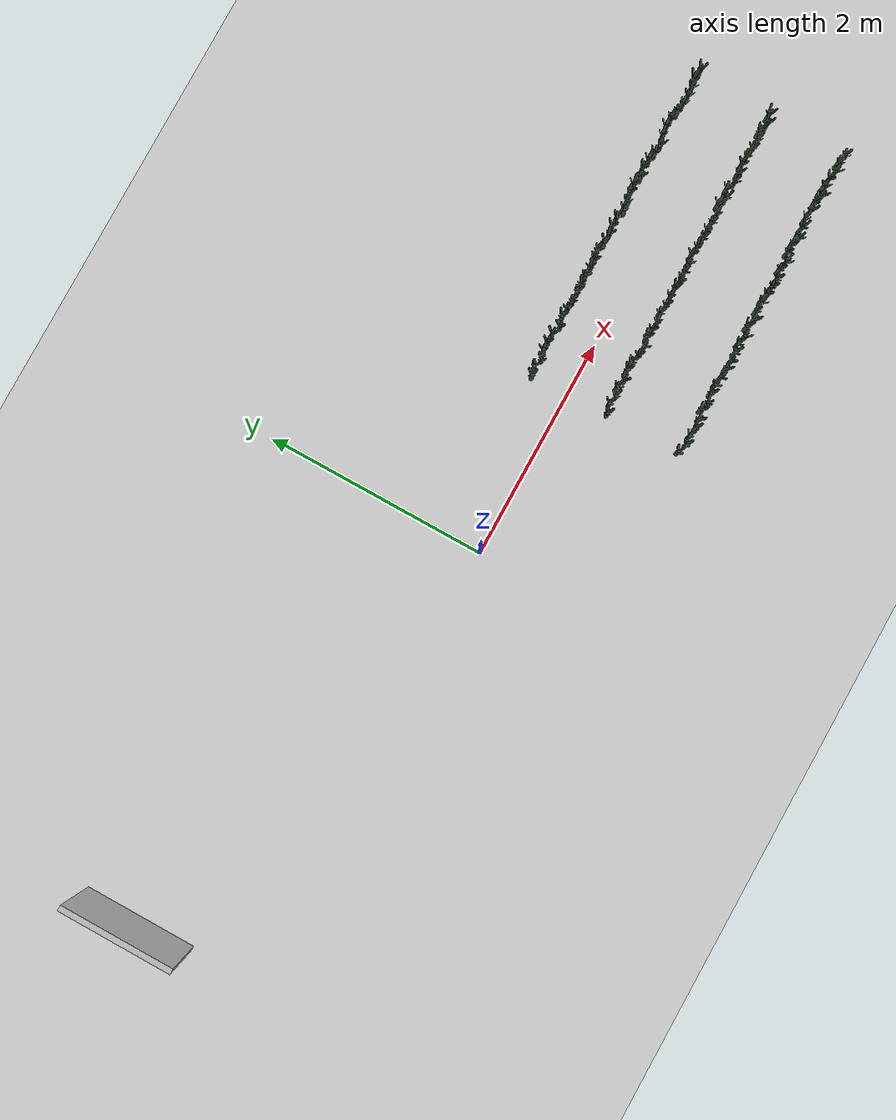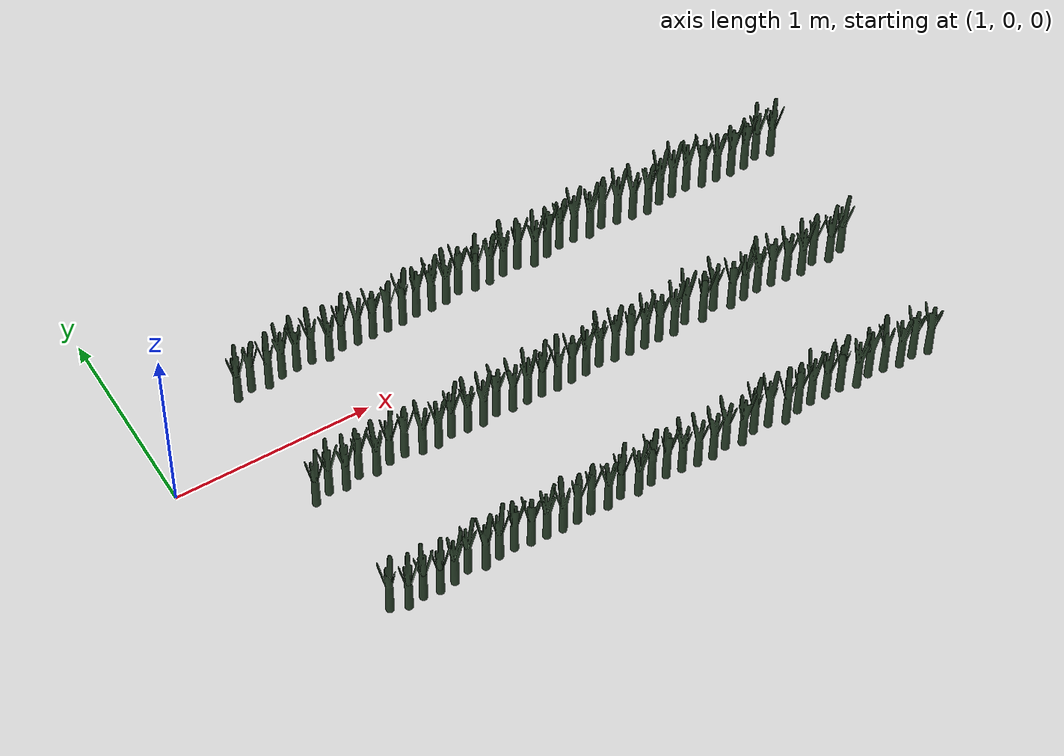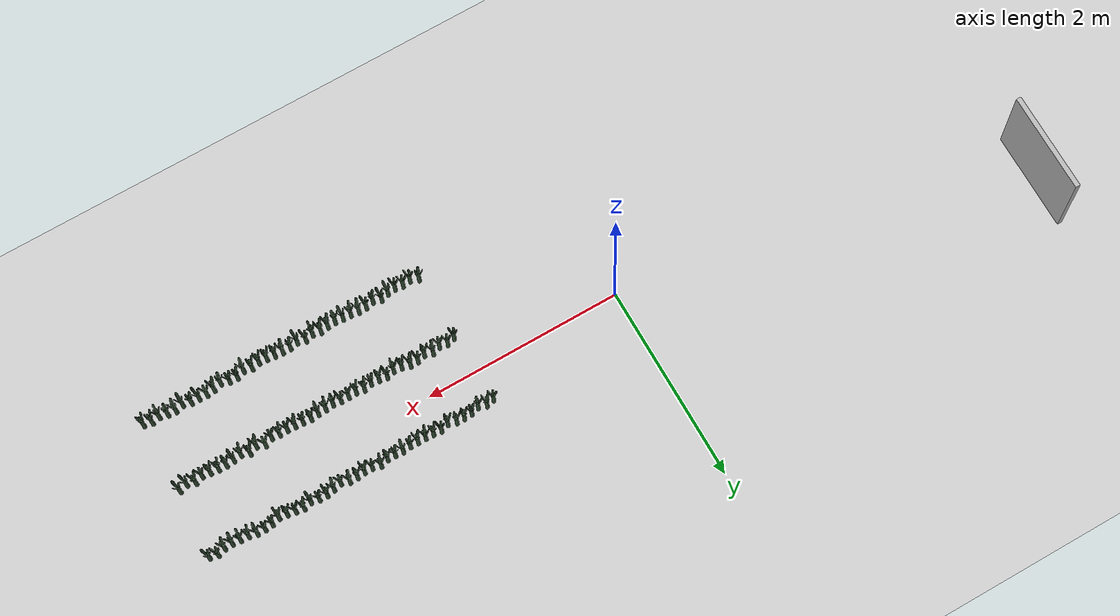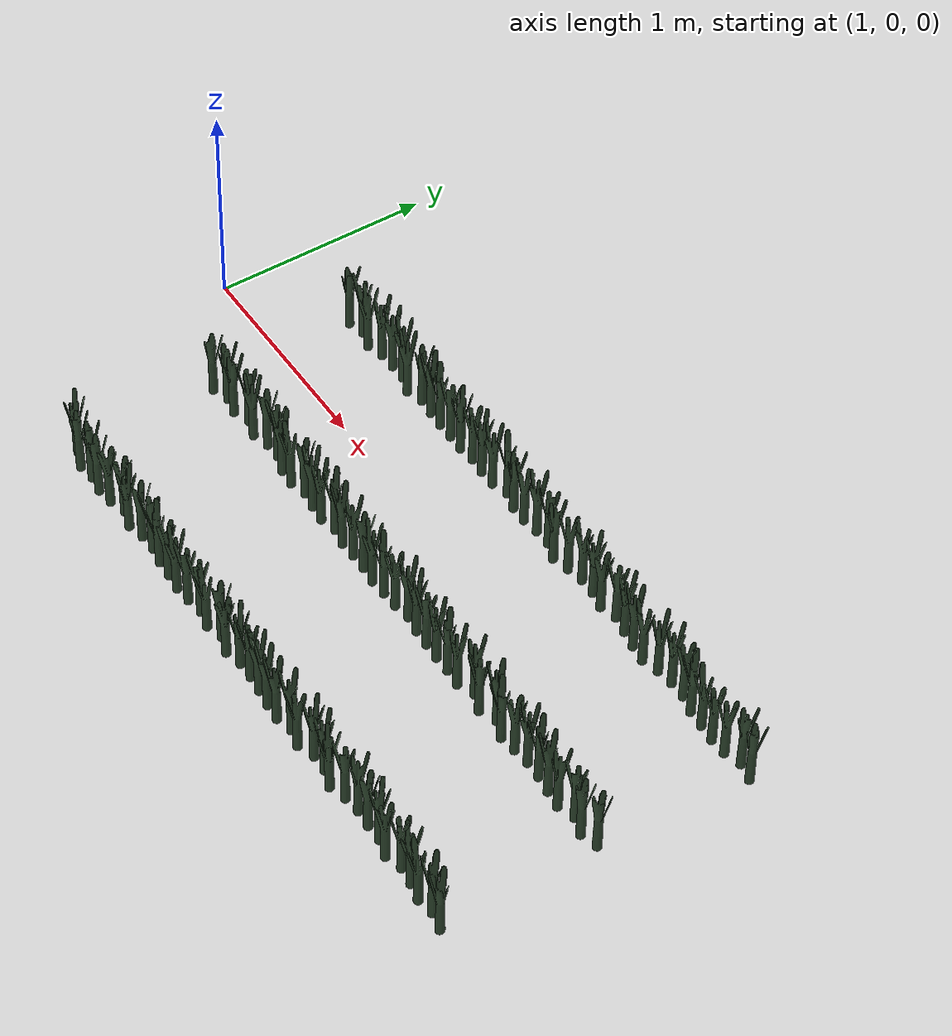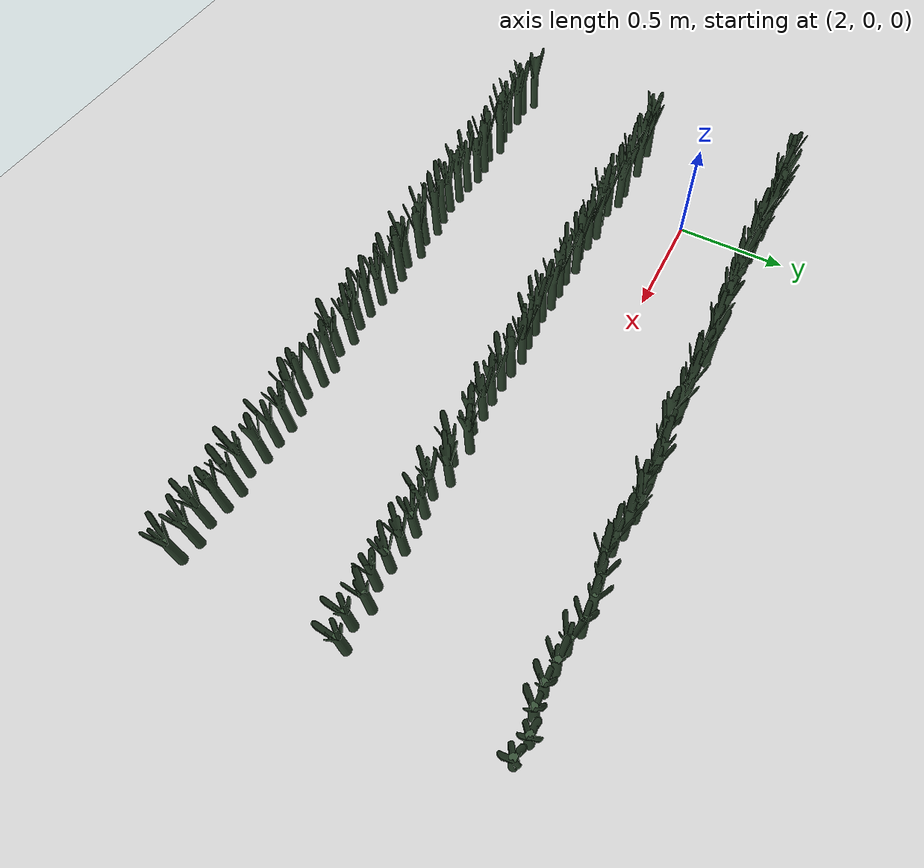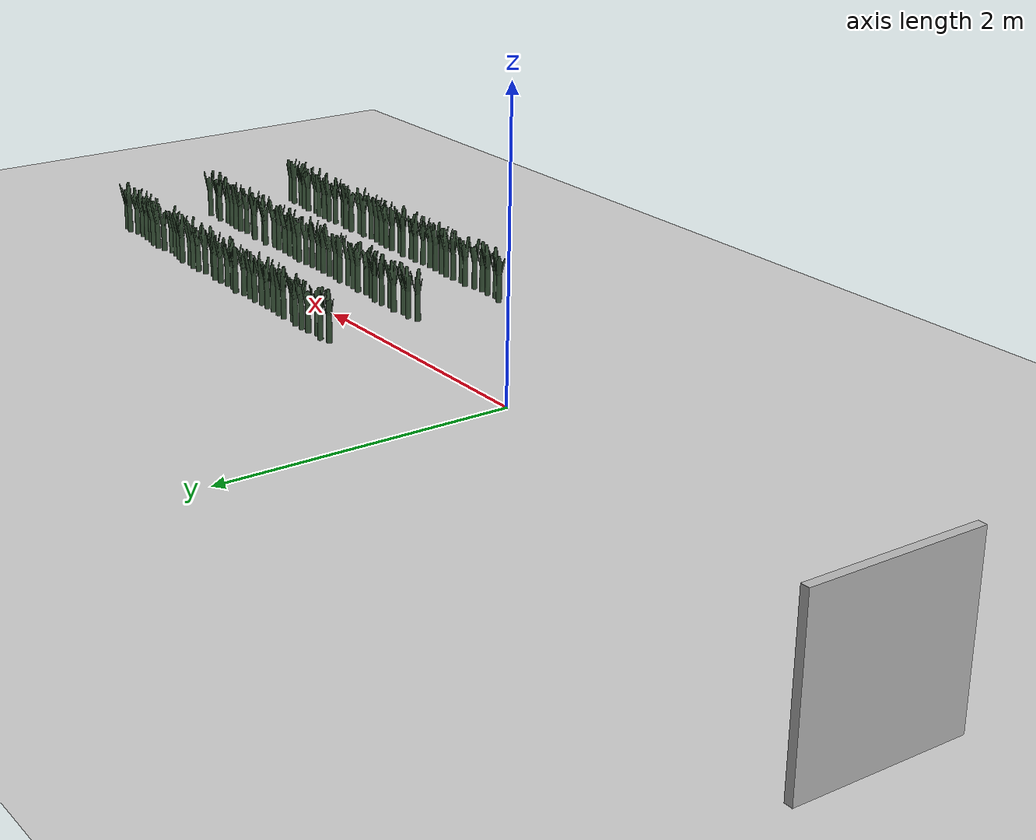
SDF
<sdf version="1.6">
 <world name="default">
  <include><uri>model://Sign</uri><pose>-4 1 0 0 0 0</pose><static>1</static></include>
  <include><uri>model://dirt_plane</uri></include>
  <include>
   <uri>model://Leek</uri>
   <pose>1.500000 0.336683 0.15 0 0 -119.856110</pose>
   <static>0</static>
  </include>
  <include><uri>model://Leek</uri><pose>1.580000 0.357397 0.15 0 0 66.569121</pose><static>0</static></include>
  <include>
   <uri>model://Leek</uri>
   <pose>1.660000 0.331286 0.15 0 0 -168.427791</pose>
   <static>0</static>
  </include>
  <include><uri>model://Leek</uri><pose>1.740000 0.353505 0.15 0 0 31.543820</pose><static>0</static></include>
  <include><uri>model://Leek</uri><pose>1.820000 0.357174 0.15 0 0 64.565280</pose><static>0</static></include>
  <include><uri>model://Leek</uri><pose>1.900000 0.358542 0.15 0 0 76.876456</pose><static>0</static></include>
  <include>
   <uri>model://Leek</uri>
   <pose>1.980000 0.330634 0.15 0 0 -174.296210</pose>
   <static>0</static>
  </include>
  <include><uri>model://Leek</uri><pose>2.060000 0.354812 0.15 0 0 43.304618</pose><static>0</static></include>
  <include><uri>model://Leek</uri><pose>2.140000 0.347443 0.15 0 0 -23.017415</pose><static>0</static></include>
  <include><uri>model://Leek</uri><pose>2.220000 0.343311 0.15 0 0 -60.205158</pose><static>0</static></include>
  <include><uri>model://Leek</uri><pose>2.300000 0.344143 0.15 0 0 -52.716708</pose><static>0</static></include>
  <include><uri>model://Leek</uri><pose>2.380000 0.342408 0.15 0 0 -68.332397</pose><static>0</static></include>
  <include><uri>model://Leek</uri><pose>2.460000 0.351909 0.15 0 0 17.183049</pose><static>0</static></include>
  <include><uri>model://Leek</uri><pose>2.540000 0.345871 0.15 0 0 -37.156721</pose><static>0</static></include>
  <include><uri>model://Leek</uri><pose>2.620000 0.346687 0.15 0 0 -29.818209</pose><static>0</static></include>
  <include><uri>model://Leek</uri><pose>2.700000 0.369848 0.15 0 0 178.630719</pose><static>0</static></include>
  <include><uri>model://Leek</uri><pose>2.780000 0.346449 0.15 0 0 -31.954534</pose><static>0</static></include>
  <include><uri>model://Leek</uri><pose>2.860000 0.345508 0.15 0 0 -40.426642</pose><static>0</static></include>
  <include><uri>model://Leek</uri><pose>2.940000 0.356463 0.15 0 0 58.168070</pose><static>0</static></include>
  <include><uri>model://Leek</uri><pose>3.020000 0.359552 0.15 0 0 85.967887</pose><static>0</static></include>
  <include>
   <uri>model://Leek</uri>
   <pose>3.100000 0.330429 0.15 0 0 -176.138756</pose>
   <static>0</static>
  </include>
  <include><uri>model://Leek</uri><pose>3.180000 0.349798 0.15 0 0 -1.814844</pose><static>0</static></include>
  <include><uri>model://Leek</uri><pose>3.260000 0.365732 0.15 0 0 141.584623</pose><static>0</static></include>
  <include><uri>model://Leek</uri><pose>3.340000 0.364702 0.15 0 0 132.321856</pose><static>0</static></include>
  <include><uri>model://Leek</uri><pose>3.420000 0.347757 0.15 0 0 -20.185411</pose><static>0</static></include>
  <include><uri>model://Leek</uri><pose>3.500000 0.369989 0.15 0 0 179.902919</pose><static>0</static></include>
  <include><uri>model://Leek</uri><pose>3.580000 0.355599 0.15 0 0 50.393055</pose><static>0</static></include>
  <include><uri>model://Leek</uri><pose>3.660000 0.341826 0.15 0 0 -73.567735</pose><static>0</static></include>
  <include>
   <uri>model://Leek</uri>
   <pose>3.740000 0.332226 0.15 0 0 -159.968073</pose>
   <static>0</static>
  </include>
  <include><uri>model://Leek</uri><pose>3.820000 0.353527 0.15 0 0 31.746757</pose><static>0</static></include>
  <include><uri>model://Leek</uri><pose>3.900000 0.363976 0.15 0 0 125.786997</pose><static>0</static></include>
  <include><uri>model://Leek</uri><pose>3.980000 0.363087 0.15 0 0 117.787086</pose><static>0</static></include>
  <include><uri>model://Leek</uri><pose>4.060000 0.343284 0.15 0 0 -60.441508</pose><static>0</static></include>
  <include>
   <uri>model://Leek</uri>
   <pose>4.140000 0.338452 0.15 0 0 -103.929621</pose>
   <static>0</static>
  </include>
  <include>
   <uri>model://Leek</uri>
   <pose>4.220000 0.331648 0.15 0 0 -165.169075</pose>
   <static>0</static>
  </include>
  <include>
   <uri>model://Leek</uri>
   <pose>4.300000 0.335132 0.15 0 0 -133.813523</pose>
   <static>0</static>
  </include>
  <include><uri>model://Leek</uri><pose>4.380000 0.358325 0.15 0 0 74.927537</pose><static>0</static></include>
  <include><uri>model://Leek</uri><pose>4.460000 0.341531 0.15 0 0 -76.222130</pose><static>0</static></include>
  <include>
   <uri>model://Leek</uri>
   <pose>1.525438 -0.367535 0.15 0 0 -157.819412</pose>
   <static>0</static>
  </include>
  <include><uri>model://Leek</uri><pose>1.605438 -0.343062 0.15 0 0 62.445167</pose><static>0</static></include>
  <include>
   <uri>model://Leek</uri>
   <pose>1.685438 -0.360500 0.15 0 0 -94.500586</pose>
   <static>0</static>
  </include>
  <include>
   <uri>model://Leek</uri>
   <pose>1.765438 -0.332061 0.15 0 0 161.451084</pose>
   <static>0</static>
  </include>
  <include>
   <uri>model://Leek</uri>
   <pose>1.845438 -0.358896 0.15 0 0 -80.061940</pose>
   <static>0</static>
  </include>
  <include>
   <uri>model://Leek</uri>
   <pose>1.925438 -0.336125 0.15 0 0 124.874266</pose>
   <static>0</static>
  </include>
  <include>
   <uri>model://Leek</uri>
   <pose>2.005438 -0.333495 0.15 0 0 148.548524</pose>
   <static>0</static>
  </include>
  <include>
   <uri>model://Leek</uri>
   <pose>2.085438 -0.360251 0.15 0 0 -92.261435</pose>
   <static>0</static>
  </include>
  <include>
   <uri>model://Leek</uri>
   <pose>2.165438 -0.366412 0.15 0 0 -147.711038</pose>
   <static>0</static>
  </include>
  <include><uri>model://Leek</uri><pose>2.245438 -0.345925 0.15 0 0 36.679219</pose><static>0</static></include>
  <include>
   <uri>model://Leek</uri>
   <pose>2.325438 -0.357481 0.15 0 0 -67.328499</pose>
   <static>0</static>
  </include>
  <include>
   <uri>model://Leek</uri>
   <pose>2.405438 -0.365327 0.15 0 0 -137.947328</pose>
   <static>0</static>
  </include>
  <include><uri>model://Leek</uri><pose>2.485438 -0.345551 0.15 0 0 40.037220</pose><static>0</static></include>
  <include>
   <uri>model://Leek</uri>
   <pose>2.565438 -0.360932 0.15 0 0 -98.387993</pose>
   <static>0</static>
  </include>
  <include>
   <uri>model://Leek</uri>
   <pose>2.645438 -0.357677 0.15 0 0 -69.090162</pose>
   <static>0</static>
  </include>
  <include>
   <uri>model://Leek</uri>
   <pose>2.725438 -0.356380 0.15 0 0 -57.418252</pose>
   <static>0</static>
  </include>
  <include>
   <uri>model://Leek</uri>
   <pose>2.805438 -0.365213 0.15 0 0 -136.920149</pose>
   <static>0</static>
  </include>
  <include>
   <uri>model://Leek</uri>
   <pose>2.885438 -0.358785 0.15 0 0 -79.065460</pose>
   <static>0</static>
  </include>
  <include>
   <uri>model://Leek</uri>
   <pose>2.965438 -0.355064 0.15 0 0 -45.576386</pose>
   <static>0</static>
  </include>
  <include><uri>model://Leek</uri><pose>3.045438 -0.342125 0.15 0 0 70.873980</pose><static>0</static></include>
  <include>
   <uri>model://Leek</uri>
   <pose>3.125438 -0.354135 0.15 0 0 -37.214820</pose>
   <static>0</static>
  </include>
  <include>
   <uri>model://Leek</uri>
   <pose>3.205438 -0.357931 0.15 0 0 -71.383149</pose>
   <static>0</static>
  </include>
  <include>
   <uri>model://Leek</uri>
   <pose>3.285438 -0.361156 0.15 0 0 -100.400910</pose>
   <static>0</static>
  </include>
  <include>
   <uri>model://Leek</uri>
   <pose>3.365438 -0.359510 0.15 0 0 -85.592174</pose>
   <static>0</static>
  </include>
  <include>
   <uri>model://Leek</uri>
   <pose>3.445438 -0.366042 0.15 0 0 -144.377887</pose>
   <static>0</static>
  </include>
  <include>
   <uri>model://Leek</uri>
   <pose>3.525438 -0.334645 0.15 0 0 138.194416</pose>
   <static>0</static>
  </include>
  <include>
   <uri>model://Leek</uri>
   <pose>3.605438 -0.366300 0.15 0 0 -146.702126</pose>
   <static>0</static>
  </include>
  <include>
   <uri>model://Leek</uri>
   <pose>3.685438 -0.333715 0.15 0 0 146.564105</pose>
   <static>0</static>
  </include>
  <include>
   <uri>model://Leek</uri>
   <pose>3.765438 -0.366469 0.15 0 0 -148.220319</pose>
   <static>0</static>
  </include>
  <include>
   <uri>model://Leek</uri>
   <pose>3.845438 -0.355030 0.15 0 0 -45.270060</pose>
   <static>0</static>
  </include>
  <include><uri>model://Leek</uri><pose>3.925438 -0.346333 0.15 0 0 33.002592</pose><static>0</static></include>
  <include><uri>model://Leek</uri><pose>4.005438 -0.348348 0.15 0 0 14.865746</pose><static>0</static></include>
  <include>
   <uri>model://Leek</uri>
   <pose>4.085438 -0.358151 0.15 0 0 -73.363489</pose>
   <static>0</static>
  </include>
  <include>
   <uri>model://Leek</uri>
   <pose>4.165438 -0.366782 0.15 0 0 -151.035081</pose>
   <static>0</static>
  </include>
  <include><uri>model://Leek</uri><pose>4.245438 -0.340495 0.15 0 0 85.541212</pose><static>0</static></include>
  <include>
   <uri>model://Leek</uri>
   <pose>4.325438 -0.367566 0.15 0 0 -158.098135</pose>
   <static>0</static>
  </include>
  <include><uri>model://Leek</uri><pose>4.405438 -0.344539 0.15 0 0 49.147481</pose><static>0</static></include>
  <include>
   <uri>model://Leek</uri>
   <pose>1.529162 -1.035242 0.15 0 0 132.819985</pose>
   <static>0</static>
  </include>
  <include>
   <uri>model://Leek</uri>
   <pose>1.609162 -1.066121 0.15 0 0 -145.084586</pose>
   <static>0</static>
  </include>
  <include>
   <uri>model://Leek</uri>
   <pose>1.689162 -1.054933 0.15 0 0 -44.396029</pose>
   <static>0</static>
  </include>
  <include>
   <uri>model://Leek</uri>
   <pose>1.769162 -1.066828 0.15 0 0 -151.455605</pose>
   <static>0</static>
  </include>
  <include>
   <uri>model://Leek</uri>
   <pose>1.849162 -1.057821 0.15 0 0 -70.384637</pose>
   <static>0</static>
  </include>
  <include>
   <uri>model://Leek</uri>
   <pose>1.929162 -1.033371 0.15 0 0 149.664360</pose>
   <static>0</static>
  </include>
  <include>
   <uri>model://Leek</uri>
   <pose>2.009162 -1.058314 0.15 0 0 -74.828721</pose>
   <static>0</static>
  </include>
  <include><uri>model://Leek</uri><pose>2.089162 -1.040326 0.15 0 0 87.064767</pose><static>0</static></include>
  <include>
   <uri>model://Leek</uri>
   <pose>2.169162 -1.036252 0.15 0 0 123.731496</pose>
   <static>0</static>
  </include>
  <include><uri>model://Leek</uri><pose>2.249162 -1.049710 0.15 0 0 2.609442</pose><static>0</static></include>
  <include>
   <uri>model://Leek</uri>
   <pose>2.329162 -1.052934 0.15 0 0 -26.408365</pose>
   <static>0</static>
  </include>
  <include>
   <uri>model://Leek</uri>
   <pose>2.409162 -1.060315 0.15 0 0 -92.834781</pose>
   <static>0</static>
  </include>
  <include>
   <uri>model://Leek</uri>
   <pose>2.489162 -1.053749 0.15 0 0 -33.741988</pose>
   <static>0</static>
  </include>
  <include><uri>model://Leek</uri><pose>2.569162 -1.040482 0.15 0 0 85.663845</pose><static>0</static></include>
  <include>
   <uri>model://Leek</uri>
   <pose>2.649162 -1.058735 0.15 0 0 -78.612808</pose>
   <static>0</static>
  </include>
  <include>
   <uri>model://Leek</uri>
   <pose>2.729162 -1.036829 0.15 0 0 118.535809</pose>
   <static>0</static>
  </include>
  <include>
   <uri>model://Leek</uri>
   <pose>2.809162 -1.062707 0.15 0 0 -114.364723</pose>
   <static>0</static>
  </include>
  <include><uri>model://Leek</uri><pose>2.889162 -1.044335 0.15 0 0 50.984596</pose><static>0</static></include>
  <include><uri>model://Leek</uri><pose>2.969162 -1.044636 0.15 0 0 48.274838</pose><static>0</static></include>
  <include>
   <uri>model://Leek</uri>
   <pose>3.049162 -1.051898 0.15 0 0 -17.081866</pose>
   <static>0</static>
  </include>
  <include>
   <uri>model://Leek</uri>
   <pose>3.129162 -1.061646 0.15 0 0 -104.816496</pose>
   <static>0</static>
  </include>
  <include>
   <uri>model://Leek</uri>
   <pose>3.209162 -1.065827 0.15 0 0 -142.438834</pose>
   <static>0</static>
  </include>
  <include><uri>model://Leek</uri><pose>3.289162 -1.046984 0.15 0 0 27.147261</pose><static>0</static></include>
  <include>
   <uri>model://Leek</uri>
   <pose>3.369162 -1.066955 0.15 0 0 -152.597728</pose>
   <static>0</static>
  </include>
  <include>
   <uri>model://Leek</uri>
   <pose>3.449162 -1.038766 0.15 0 0 101.105125</pose>
   <static>0</static>
  </include>
  <include><uri>model://Leek</uri><pose>3.529162 -1.040182 0.15 0 0 88.362977</pose><static>0</static></include>
  <include>
   <uri>model://Leek</uri>
   <pose>3.609162 -1.067339 0.15 0 0 -156.046737</pose>
   <static>0</static>
  </include>
  <include><uri>model://Leek</uri><pose>3.689162 -1.043970 0.15 0 0 54.272690</pose><static>0</static></include>
  <include>
   <uri>model://Leek</uri>
   <pose>3.769162 -1.033954 0.15 0 0 144.416666</pose>
   <static>0</static>
  </include>
  <include><uri>model://Leek</uri><pose>3.849162 -1.038949 0.15 0 0 99.463032</pose><static>0</static></include>
  <include>
   <uri>model://Leek</uri>
   <pose>3.929162 -1.038063 0.15 0 0 107.434072</pose>
   <static>0</static>
  </include>
  <include>
   <uri>model://Leek</uri>
   <pose>4.009162 -1.061334 0.15 0 0 -102.004976</pose>
   <static>0</static>
  </include>
  <include>
   <uri>model://Leek</uri>
   <pose>4.089162 -1.038325 0.15 0 0 105.076906</pose>
   <static>0</static>
  </include>
  <include><uri>model://Leek</uri><pose>4.169162 -1.047769 0.15 0 0 20.083347</pose><static>0</static></include>
  <include>
   <uri>model://Leek</uri>
   <pose>4.249162 -1.065026 0.15 0 0 -135.234583</pose>
   <static>0</static>
  </include>
  <include>
   <uri>model://Leek</uri>
   <pose>4.329162 -1.051147 0.15 0 0 -10.326993</pose>
   <static>0</static>
  </include>
  <include>
   <uri>model://Leek</uri>
   <pose>4.409162 -1.068597 0.15 0 0 -167.372542</pose>
   <static>0</static>
  </include>
 </world>
</sdf>
